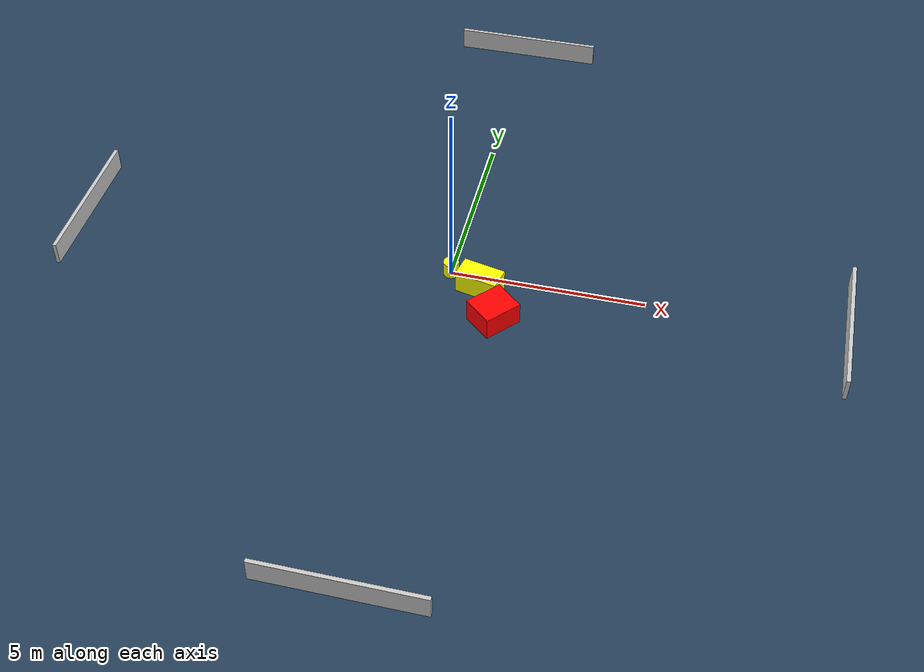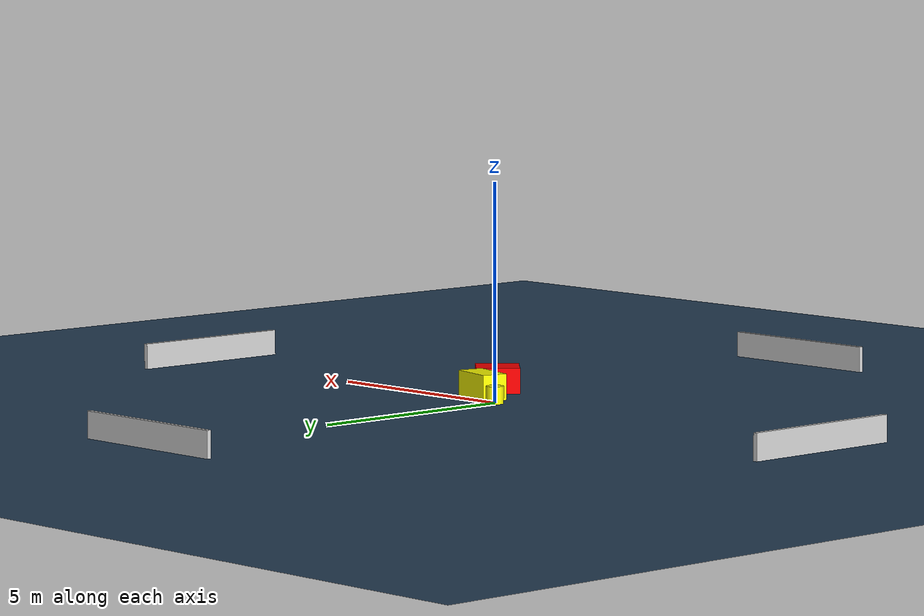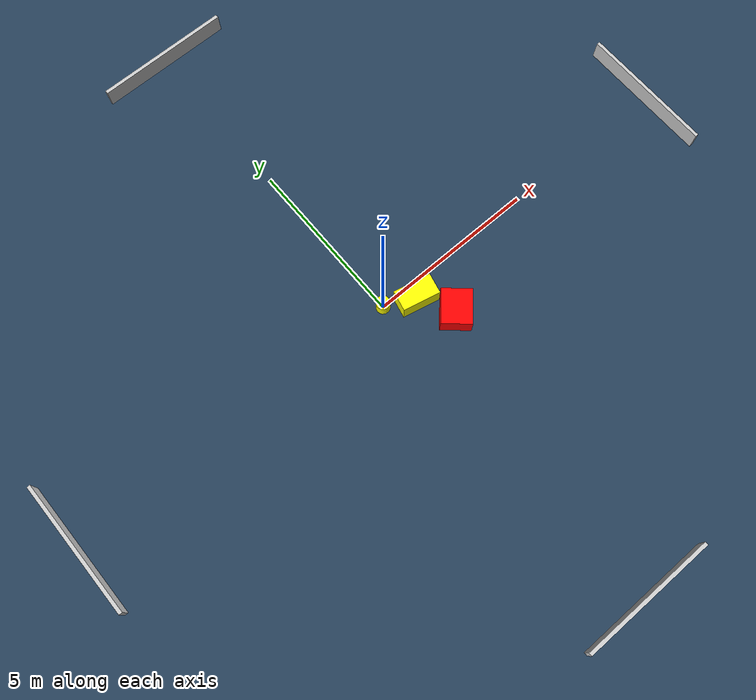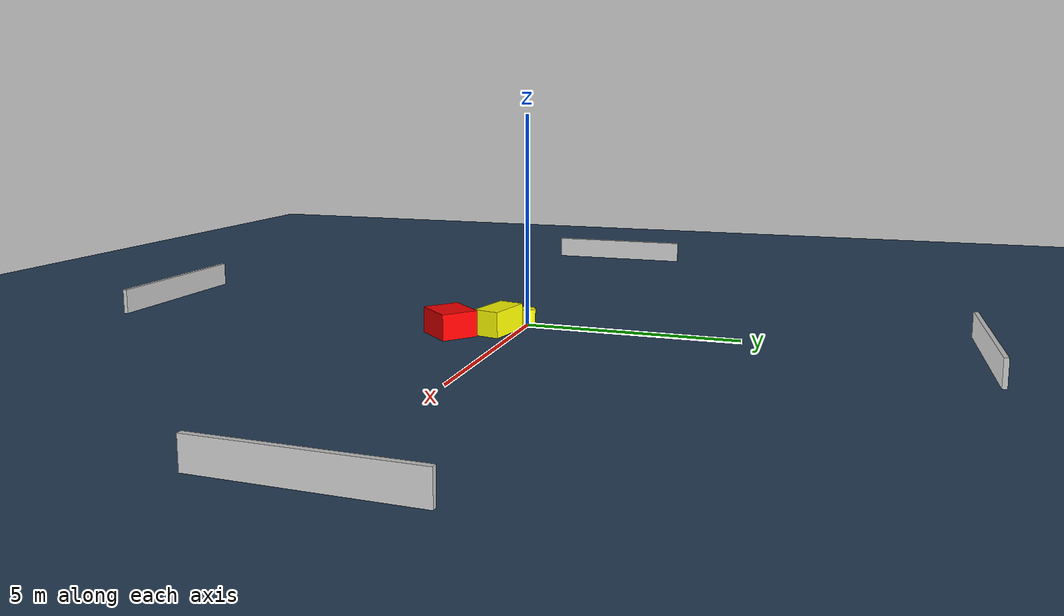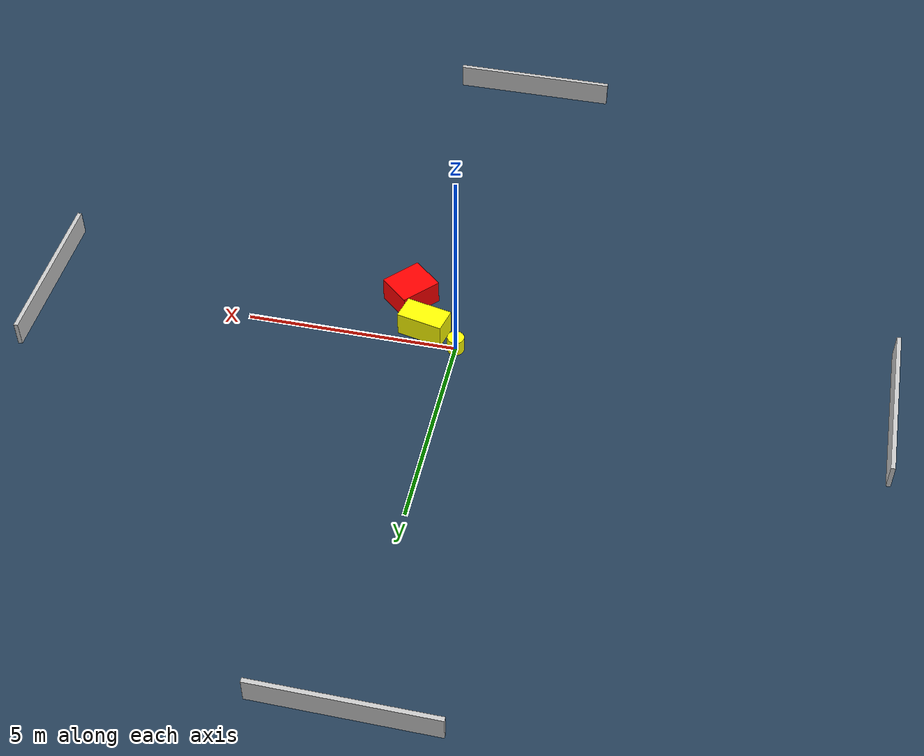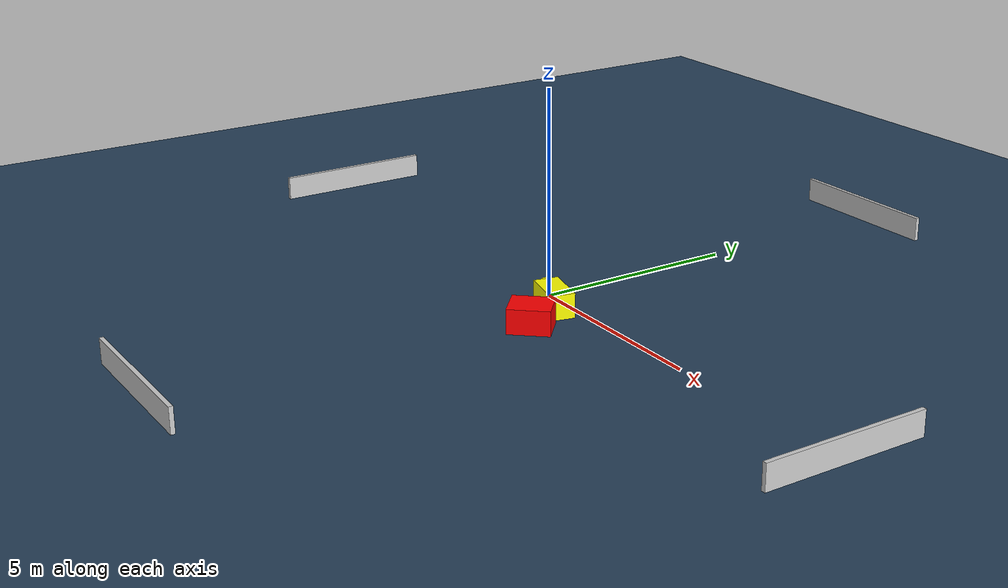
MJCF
<?xml version="1.0" ?>
<mujoco model="generated_environment">
  <option timestep="0.01" integrator="RK4" cone="elliptic"/>
  <default>
    <geom density="1"/>
  </default>
  <asset>
    <texture builtin="gradient" height="3072" name="skybox" rgb1="0.3 0.5 0.7" rgb2="0 0 0" type="skybox" width="512"/>
    <texture builtin="checker" height="300" name="groundplane" rgb1="0.2 0.3 0.4" rgb2="0.1 0.2 0.3" type="2d" width="300"/>
    <material name="groundplane" reflectance="0.2" texrepeat="5 5" texture="groundplane"/>
  </asset>
  <worldbody>
    <light dir="0 0 -1" directional="true" pos="0 0 1.5"/>
    <geom condim="3" friction="0.5 0.005 0.001" material="groundplane" name="floor" pos="0 0 0" size="0 0 0.05" type="plane"/>
    <body name="walls">
      <geom name="wall_1" condim="4" pos="-10.0 0.0 0.3" rgba="0.800000011920929 0.800000011920929 0.800000011920929 1.0" size="0.05 2.0 0.3" type="box"/>
      <geom name="wall_2" condim="4" pos="10.0 0.0 0.3" rgba="0.800000011920929 0.800000011920929 0.800000011920929 1.0" size="0.05 2.0 0.3" type="box"/>
      <geom name="wall_3" condim="4" pos="0.0 -10.0 0.3" rgba="0.800000011920929 0.800000011920929 0.800000011920929 1.0" size="2.0 0.05 0.3" type="box"/>
      <geom name="wall_4" condim="4" pos="0.0 10.0 0.3" rgba="0.800000011920929 0.800000011920929 0.800000011920929 1.0" size="2.0 0.05 0.3" type="box"/>
    </body>
    <body name="robot">
      <joint name="joint_x" type="slide" pos="0 0 0" axis="1 0 0"/>
      <joint name="joint_y" type="slide" pos="0 0 0" axis="0 1 0"/>
      <geom name="robot" type="cylinder" pos="0.0 0.0 0.2" size="0.2 0.2 0.0" mass="5.0" friction="1.0 0.005 0.0001" condim="4" rgba="1.0 1.0 0.0 1.0"/>
    </body>
    <body name="obstacle_1_movable">
      <geom name="obstacle_1_movable" condim="4" pos="0.843212293064641 -0.4101021690085743 0.3" euler="0 0 167.3504416920555" friction="0.0 0.005 0.001" rgba="1.0 1.0 0.0 1.0" size="0.5524129370206734 0.2991914784978268 0.3" type="box" mass="0.1"/>
      <joint type="free"/>
    </body>
    <body name="obstacle_2_static">
      <geom name="obstacle_2_static" condim="4" pos="1.3994950212151738 -1.397265215973498 0.3" euler="0 0 48.5990283535362" friction="0.0 0.005 0.001" rgba="1.0 0.0 0.0 1.0" size="0.5018853050309318 0.4339260836068581 0.3" type="box"/>
    </body>
  </worldbody>
  <actuator>
    <motor name="actuator_x" joint="joint_x" gear="1" ctrlrange="-1 1"/>
    <motor name="actuator_y" joint="joint_y" gear="1" ctrlrange="-1 1"/>
  </actuator>
</mujoco>
